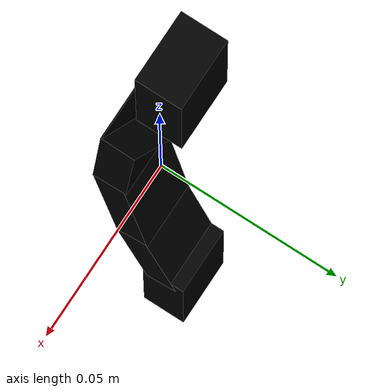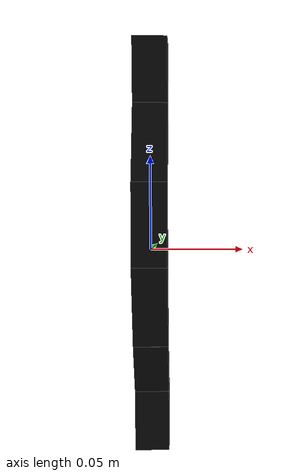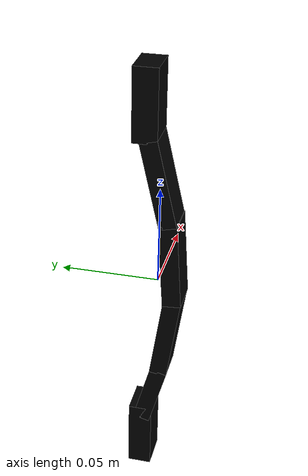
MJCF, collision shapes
<?xml version="1.0" ?>
<mujoco model="model">
    <compiler angle="radian"/>
    <asset>
        <mesh file="visuals/CabinetHandle044.obj" name="mesh"/>
        <texture file="visuals/T_BC001.png" name="tex" type="2d"/>
        <material name="mat" rgba="1 1 1 1.0" texture="tex" shininess="0.4472135901451111" specular="0.3103448502657381"/>
    </asset>
    <default>
        <default class="visual">
            <geom conaffinity="0" contype="0" group="1" type="mesh"/>
        </default>
        <default class="collision">
            <geom group="0" rgba="0 0 0 0"/>
        </default>
        <default class="spawn">
            <geom group="0" rgba="0 0 0 0" contype="0" conaffinity="0"/>
            <site group="0" rgba="0 0 0 0"/>
        </default>
    </default>
    <worldbody>
        <body>
            <body name="object">
                <geom mesh="mesh" type="mesh" solimp="0.998 0.998 0.001" solref="0.001 1" density="100" friction="0.95 0.3 0.1" class="visual" material="mat"/>
                <geom class="collision" type="box" pos="-2.801981267204469e-18 0.006140797398984432 0.09467127174139023" size="0.009395813569426537 0.006181228905916214 0.01819511689245701" quat="1.0 0.0 0.0 0.0" name="handle_connector"/>
                <geom class="collision" type="box" pos="5.815894479151149e-18 -0.0007644286379218102 0.05585981160402298" size="0.009395815432071686 0.004513916559517384 0.022214166820049286" quat="0.9931753873825073 -0.11663047969341278 2.5897168785740728e-17 1.2578173155228492e-24"/>
                <geom class="collision" type="box" pos="1.529592279358762e-17 -0.007410346996039152 0.01316556241363287" size="0.009395815432071686 0.00473182275891304 0.022219598293304443" quat="0.9993845224380493 -0.035079486668109894 7.789210758193364e-18 3.67692051671085e-24"/>
                <geom class="collision" type="box" pos="2.4757729146310157e-17 -0.005957251880317926 -0.029446624219417572" size="0.009395815432071686 0.004513916559517384 0.022214168682694435" quat="0.9975045323371887 0.07060223817825317 -1.5676847737474413e-17 6.315481173249649e-24"/>
                <geom class="collision" type="box" pos="3.299285642911861e-17 0.0012497489806264639 -0.06653434038162231" size="0.009395815432071686 0.00447643268853426 0.01659536361694336" quat="0.9911808967590332 0.13251568377017975 -2.9424392649119946e-17 1.2921075213509961e-24"/>
                <geom class="collision" type="box" pos="-2.801981267204469e-18 0.006140797398984432 -0.09446074068546295" size="0.009395815432071686 0.006076558958739042 0.01844611018896103" quat="1.0 0.0 0.0 0.0"/>
            </body>
        </body>
    </worldbody>
    <actuator/>
</mujoco>
